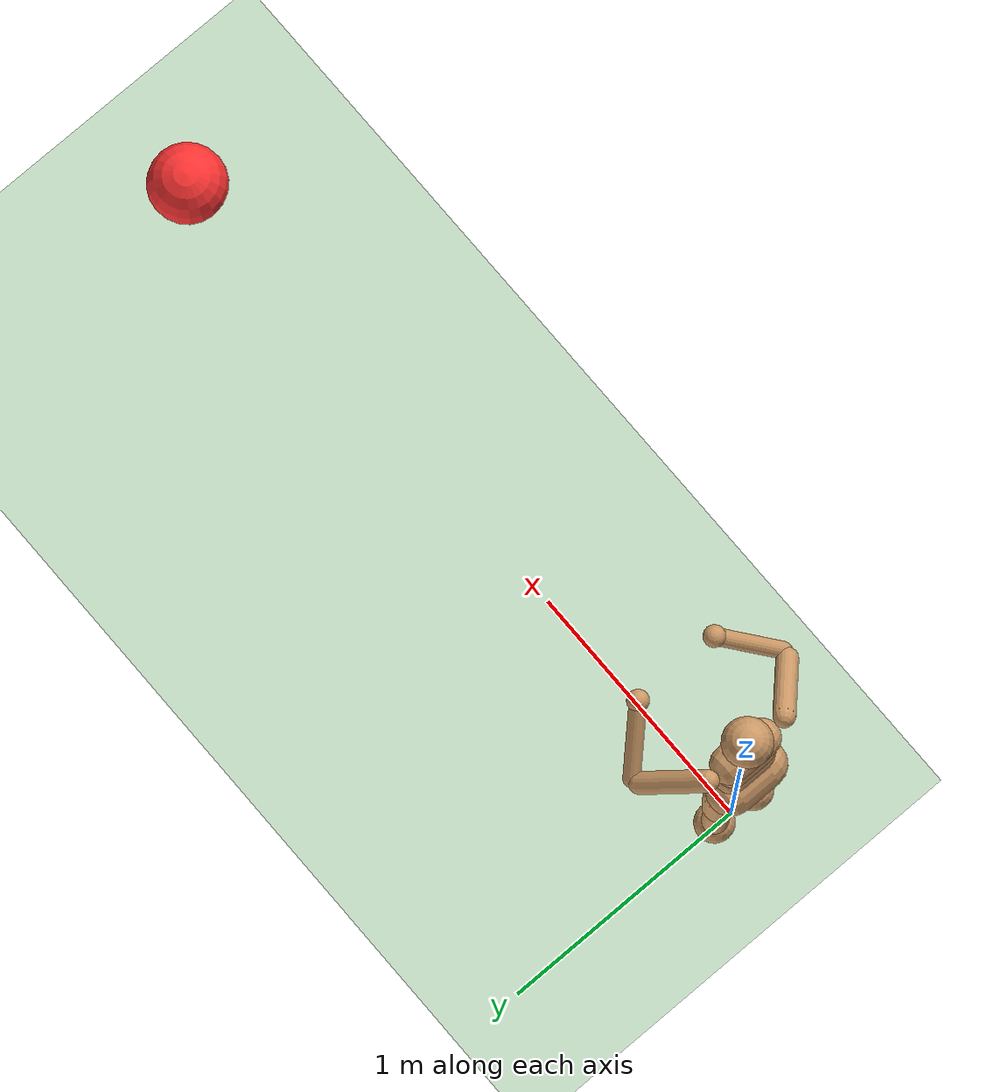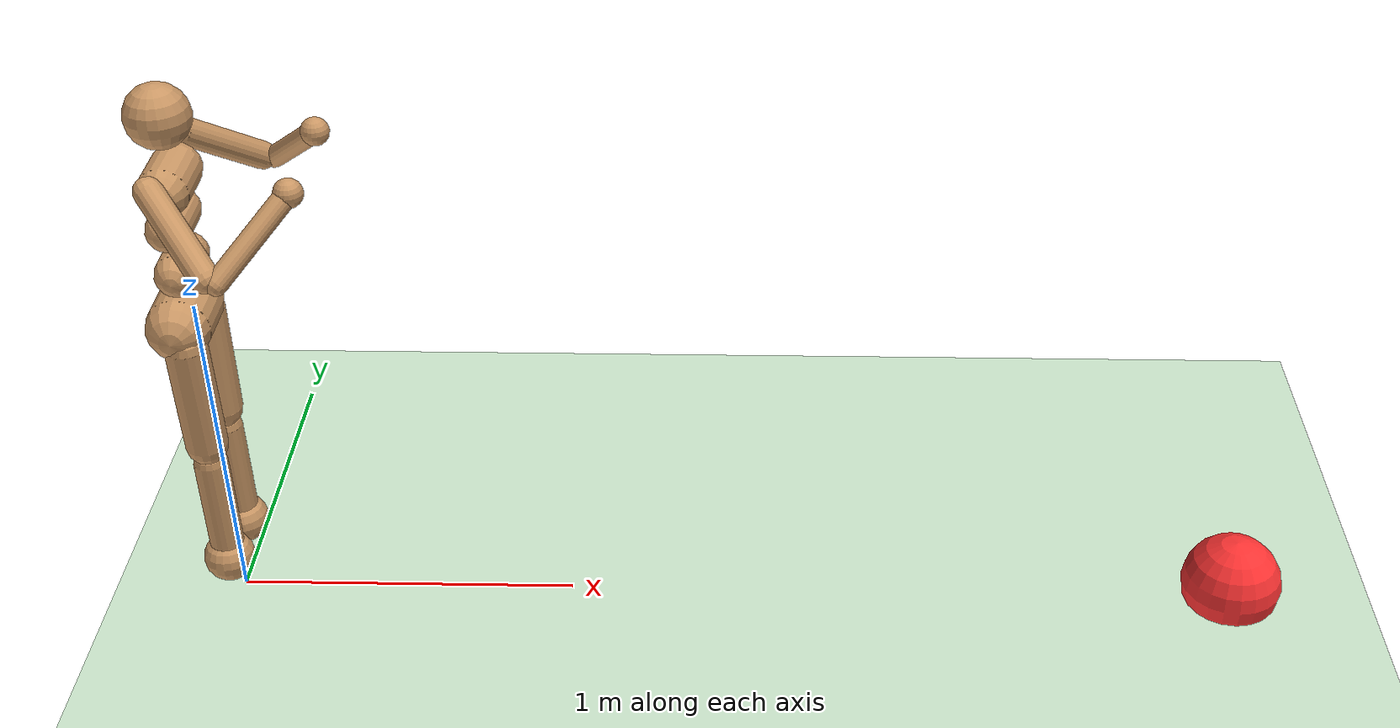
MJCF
<mujoco model="Walker MPC">
  <include file="walker_ragdoll.xml"/>

  <custom>
    <!-- MJPC Agent Settings -->
    <!-- agent_planner: 0=Sampling, 1=Gradient, 2=iLQG -->
    <numeric name="agent_planner" data="0"/>
    <numeric name="agent_horizon" data="0.8"/>
    <numeric name="agent_timestep" data="0.015"/>
    <numeric name="sampling_trajectories" data="128"/>
    <numeric name="sampling_spline_points" data="4"/>
    <numeric name="sampling_exploration" data="0.15"/>

    <text name="task_transition" data="Stand|Walk|Target"/>
  </custom>

  <sensor>
    <user name="Upright" dim="1" user="0 150.0 0.0 1000.0"/>
    <user name="Height" dim="1" user="0 200.0 0.0 1000.0"/>
    <user name="Position" dim="3" user="0 3.0 0.0 100.0"/>
    <user name="Velocity" dim="2" user="0 15.0 0.0 100.0"/>
    <user name="Control" dim="17" user="0 0.01 0.0 1.0"/>
  </sensor>
</mujoco>

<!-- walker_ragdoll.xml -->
<mujoco model="walker_ragdoll_humanoid">
  <compiler angle="radian" inertiafromgeom="true"/>
  <default>
    <joint armature="0.01" damping=".1" limited="true"/>
    <geom conaffinity="1" condim="3" contype="1" density="1000"
          friction=".7 .1 .1" material="geom"/>
  </default>
  <option integrator="RK4" timestep="0.002"/>

  <asset>
    <texture type="skybox" builtin="gradient" rgb1=".4 .5 .6" rgb2="0 0 0"
             width="100" height="100"/>
    <texture builtin="flat" height="1278" mark="cross" markrgb="1 1 1"
             name="texgeom" random="0.01" rgb1="0.8 0.6 0.4" rgb2="0.8 0.6 0.4"
             type="cube" width="127"/>
    <texture builtin="checker" height="100" name="texplane"
             rgb1="0 0 0" rgb2="0.8 0.8 0.8" type="2d" width="100"/>
    <material name="MatPlane" reflectance="0.5" shininess="1" specular="1"
              texrepeat="60 60" texture="texplane"/>
    <material name="geom" texture="texgeom" texuniform="true"/>
  </asset>

  <worldbody>
    <light cutoff="100" diffuse="1 1 1" dir="-0 0 -1.3"
           directional="true" exponent="1" pos="0 0 1.3" specular=".1 .1 .1"/>
    <geom condim="3" friction="1 .1 .1" material="MatPlane" name="floor"
          pos="0 0 0" rgba="0.8 0.9 0.8 1" size="20 20 0.125" type="plane"/>

    <body name="target_marker" mocap="true" pos="3 0 0.05">
      <geom name="target_marker_geom" type="sphere" size="0.15"
        rgba="1 0.2 0.2 0.9" contype="0" conaffinity="0"/>
    </body>

    <body name="torso" pos="0 0 1.4">
      <camera name="track" mode="trackcom" pos="0 -4 0" xyaxes="1 0 0 0 0 1"/>
      <!-- 6-DOF free joint -->
      <joint armature="0" damping="0" limited="false" name="root"
             pos="0 0 0" stiffness="0" type="free"/>

      <!-- Upper torso -->
      <geom fromto="0 -.07 0 0 .07 0" name="torso1" size="0.07" type="capsule"/>
      <!-- Head -->
      <geom name="head" pos="0 0 .19" size=".09" type="sphere"/>
      <!-- Upper waist -->
      <geom fromto="-.01 -.06 -.12 -.01 .06 -.12" name="uwaist" size="0.06" type="capsule"/>

      <!-- ── Lower waist / abdomen ── -->
      <body name="lwaist" pos="-.01 0 -0.260" quat="1.000 0 -0.002 0">
        <geom fromto="0 -.06 0 0 .06 0" name="lwaist" size="0.06" type="capsule"/>
        <joint armature="0.02" axis="0 0 1" damping="5" name="abdomen_z"
               pos="0 0 0.065" range="-0.7854 0.7854" stiffness="20" type="hinge"/>
        <joint armature="0.02" axis="0 1 0" damping="5" name="abdomen_y"
               pos="0 0 0.065" range="-1.3090 0.5236" stiffness="10" type="hinge"/>

        <!-- ── Pelvis ── -->
        <body name="pelvis" pos="0 0 -0.165" quat="1.000 0 -0.002 0">
          <joint armature="0.02" axis="1 0 0" damping="5" name="abdomen_x"
                 pos="0 0 0.1" range="-0.6109 0.6109" stiffness="10" type="hinge"/>
          <geom fromto="-.02 -.07 0 -.02 .07 0" name="butt" size="0.09" type="capsule"/>

          <!-- ── Right leg ── -->
          <body name="right_thigh" pos="0 -0.1 -0.04">
            <joint armature="0.01" axis="1 0 0" damping="5" name="right_hip_x"
                   pos="0 0 0" range="-0.4363 0.0873" stiffness="10" type="hinge"/>
            <joint armature="0.01" axis="0 0 1" damping="5" name="right_hip_z"
                   pos="0 0 0" range="-1.0472 0.6109" stiffness="10" type="hinge"/>
            <joint armature="0.0080" axis="0 1 0" damping="5" name="right_hip_y"
                   pos="0 0 0" range="-1.9199 0.3491" stiffness="20" type="hinge"/>
            <geom fromto="0 0 0 0 0.01 -.34" name="right_thigh1" size="0.06" type="capsule"/>
            <body name="right_shin" pos="0 0.01 -0.403">
              <joint armature="0.0060" axis="0 -1 0" name="right_knee"
                     pos="0 0 .02" range="-2.7925 -0.0349" type="hinge"/>
              <geom fromto="0 0 0 0 0 -.3" name="right_shin1" size="0.049" type="capsule"/>
              <body name="right_foot" pos="0 0 -0.45">
                <geom name="right_foot" pos="0 0 0.1" size="0.075" type="sphere"/>
              </body>
            </body>
          </body>

          <!-- ── Left leg ── -->
          <body name="left_thigh" pos="0 0.1 -0.04">
            <joint armature="0.01" axis="-1 0 0" damping="5" name="left_hip_x"
                   pos="0 0 0" range="-0.4363 0.0873" stiffness="10" type="hinge"/>
            <joint armature="0.01" axis="0 0 -1" damping="5" name="left_hip_z"
                   pos="0 0 0" range="-1.0472 0.6109" stiffness="10" type="hinge"/>
            <joint armature="0.01" axis="0 1 0" damping="5" name="left_hip_y"
                   pos="0 0 0" range="-1.9199 0.3491" stiffness="20" type="hinge"/>
            <geom fromto="0 0 0 0 -0.01 -.34" name="left_thigh1" size="0.06" type="capsule"/>
            <body name="left_shin" pos="0 -0.01 -0.403">
              <joint armature="0.0060" axis="0 -1 0" name="left_knee"
                     pos="0 0 .02" range="-2.7925 -0.0349" stiffness="1" type="hinge"/>
              <geom fromto="0 0 0 0 0 -.3" name="left_shin1" size="0.049" type="capsule"/>
              <body name="left_foot" pos="0 0 -0.45">
                <geom name="left_foot" type="sphere" size="0.075" pos="0 0 0.1"/>
              </body>
            </body>
          </body>

        </body><!-- pelvis -->
      </body><!-- lwaist -->

      <!-- ── Right arm ── -->
      <body name="right_upper_arm" pos="0 -0.17 0.06">
        <joint armature="0.0068" axis="2 1 1" name="right_shoulder1"
               pos="0 0 0" range="-1.4835 1.0472" stiffness="1" type="hinge"/>
        <joint armature="0.0051" axis="0 -1 1" name="right_shoulder2"
               pos="0 0 0" range="-1.4835 1.0472" stiffness="1" type="hinge"/>
        <geom fromto="0 0 0 .16 -.16 -.16" name="right_uarm1" size="0.04 0.16" type="capsule"/>
        <body name="right_lower_arm" pos=".18 -.18 -.18">
          <joint armature="0.0028" axis="0 -1 1" name="right_elbow"
                 pos="0 0 0" range="-1.5708 0.8727" stiffness="0" type="hinge"/>
          <geom fromto="0.01 0.01 0.01 .17 .17 .17" name="right_larm" size="0.031" type="capsule"/>
          <geom name="right_hand" pos=".18 .18 .18" size="0.04" type="sphere"/>
        </body>
      </body>

      <!-- ── Left arm ── -->
      <body name="left_upper_arm" pos="0 0.17 0.06">
        <joint armature="0.0068" axis="2 -1 1" name="left_shoulder1"
               pos="0 0 0" range="-1.0472 1.4835" stiffness="1" type="hinge"/>
        <joint armature="0.0051" axis="0 1 1" name="left_shoulder2"
               pos="0 0 0" range="-1.0472 1.4835" stiffness="1" type="hinge"/>
        <geom fromto="0 0 0 .16 .16 -.16" name="left_uarm1" size="0.04 0.16" type="capsule"/>
        <body name="left_lower_arm" pos=".18 .18 -.18">
          <joint armature="0.0028" axis="0 -1 -1" name="left_elbow"
                 pos="0 0 0" range="-1.5708 0.8727" stiffness="0" type="hinge"/>
          <geom fromto="0.01 -0.01 0.01 .17 -.17 .17" name="left_larm" size="0.031" type="capsule"/>
          <geom name="left_hand" pos=".18 -.18 .18" size="0.04" type="sphere"/>
        </body>
      </body>

    </body><!-- torso -->
  </worldbody>

  <tendon>
    <fixed name="left_hipknee">
      <joint coef="-1" joint="left_hip_y"/>
      <joint coef="1"  joint="left_knee"/>
    </fixed>
    <fixed name="right_hipknee">
      <joint coef="-1" joint="right_hip_y"/>
      <joint coef="1"  joint="right_knee"/>
    </fixed>
  </tendon>

  <actuator>
    <motor ctrllimited="true" ctrlrange="-1.0 1.0" gear="100" joint="abdomen_y"        name="abdomen_y"/>
    <motor ctrllimited="true" ctrlrange="-1.0 1.0" gear="100" joint="abdomen_z"        name="abdomen_z"/>
    <motor ctrllimited="true" ctrlrange="-1.0 1.0" gear="100" joint="abdomen_x"        name="abdomen_x"/>
    <motor ctrllimited="true" ctrlrange="-1.0 1.0" gear="100" joint="right_hip_x"     name="right_hip_x"/>
    <motor ctrllimited="true" ctrlrange="-1.0 1.0" gear="100" joint="right_hip_z"     name="right_hip_z"/>
    <motor ctrllimited="true" ctrlrange="-1.0 1.0" gear="300" joint="right_hip_y"     name="right_hip_y"/>
    <motor ctrllimited="true" ctrlrange="-1.0 1.0" gear="200" joint="right_knee"      name="right_knee"/>
    <motor ctrllimited="true" ctrlrange="-1.0 1.0" gear="100" joint="left_hip_x"      name="left_hip_x"/>
    <motor ctrllimited="true" ctrlrange="-1.0 1.0" gear="100" joint="left_hip_z"      name="left_hip_z"/>
    <motor ctrllimited="true" ctrlrange="-1.0 1.0" gear="300" joint="left_hip_y"      name="left_hip_y"/>
    <motor ctrllimited="true" ctrlrange="-1.0 1.0" gear="200" joint="left_knee"       name="left_knee"/>
    <motor ctrllimited="true" ctrlrange="-1.0 1.0" gear="25"  joint="right_shoulder1" name="right_shoulder1"/>
    <motor ctrllimited="true" ctrlrange="-1.0 1.0" gear="25"  joint="right_shoulder2" name="right_shoulder2"/>
    <motor ctrllimited="true" ctrlrange="-1.0 1.0" gear="25"  joint="right_elbow"     name="right_elbow"/>
    <motor ctrllimited="true" ctrlrange="-1.0 1.0" gear="25"  joint="left_shoulder1"  name="left_shoulder1"/>
    <motor ctrllimited="true" ctrlrange="-1.0 1.0" gear="25"  joint="left_shoulder2"  name="left_shoulder2"/>
    <motor ctrllimited="true" ctrlrange="-1.0 1.0" gear="25"  joint="left_elbow"      name="left_elbow"/>
  </actuator>

</mujoco>
